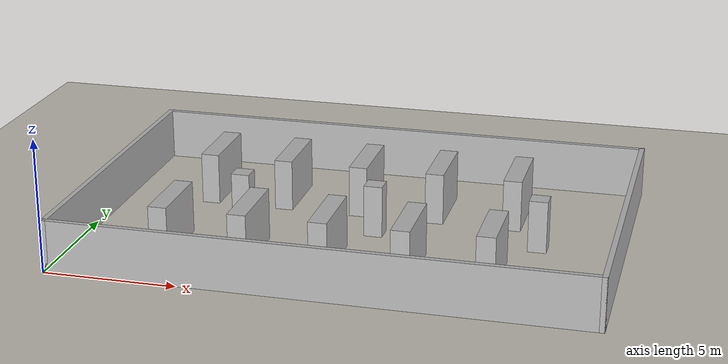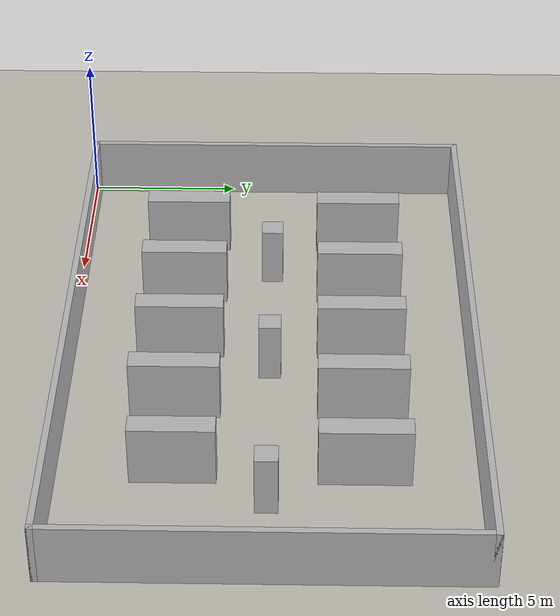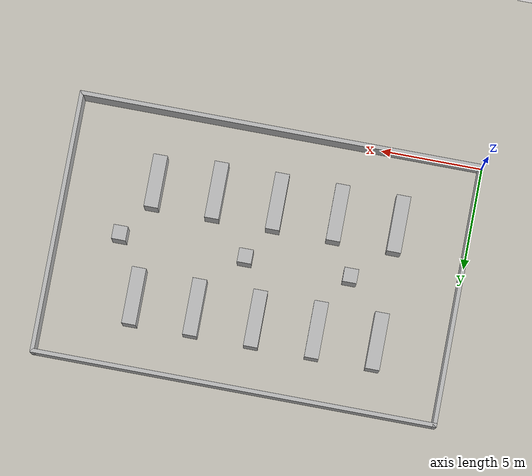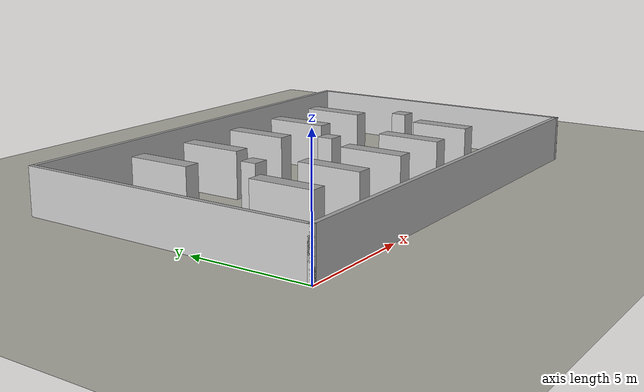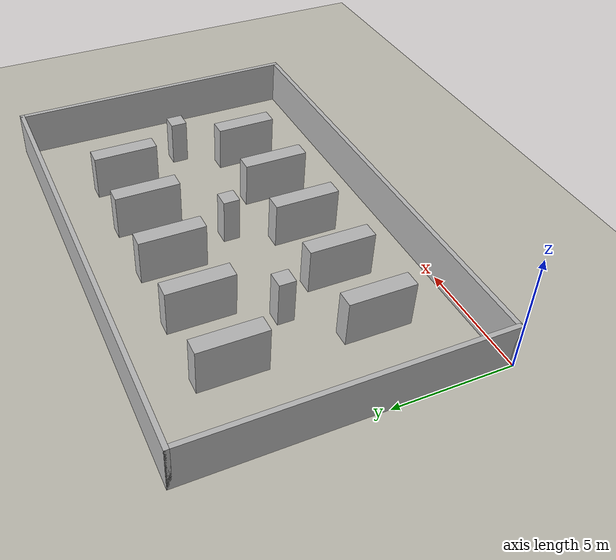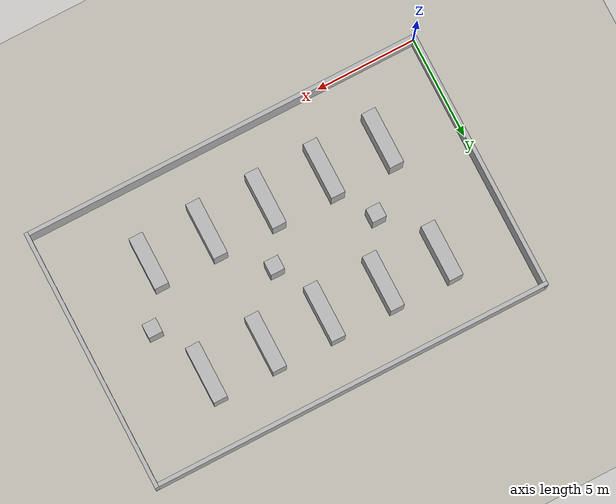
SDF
<?xml version="1.0" ?>
<sdf version="1.9">
  <world name="warehouse">
    <physics name="1ms" type="ignored">
      <max_step_size>0.001</max_step_size>
      <real_time_factor>1.0</real_time_factor>
    </physics>

    <plugin filename="gz-sim-physics-system" name="gz::sim::systems::Physics"/>
    <plugin filename="gz-sim-user-commands-system" name="gz::sim::systems::UserCommands"/>
    <plugin filename="gz-sim-scene-broadcaster-system" name="gz::sim::systems::SceneBroadcaster"/>
    <plugin filename="gz-sim-contact-system" name="gz::sim::systems::Contact"/>

    <light type="directional" name="sun">
      <cast_shadows>true</cast_shadows>
      <pose>10 6.5 10 0 0 0</pose>
      <diffuse>0.9 0.9 0.9 1</diffuse>
      <specular>0.2 0.2 0.2 1</specular>
      <direction>-0.3 0.2 -0.95</direction>
    </light>

    <model name="ground_plane">
      <static>true</static>
      <pose>10 6.5 0 0 0 0</pose>
      <link name="link">
        <collision name="collision">
          <geometry>
            <plane>
              <normal>0 0 1</normal>
              <size>40 40</size>
            </plane>
          </geometry>
        </collision>
        <visual name="visual">
          <geometry>
            <plane>
              <normal>0 0 1</normal>
              <size>40 40</size>
            </plane>
          </geometry>
          <material>
            <ambient>0.75 0.74 0.70 1</ambient>
            <diffuse>0.75 0.74 0.70 1</diffuse>
          </material>
        </visual>
      </link>
    </model>

    <!-- outer walls: closed 20 x 13 m box, matching maps/warehouse_a.pgm -->
    <model name="walls">
      <static>true</static>
      <link name="link">
        <visual name="wall_south">
          <pose>10 0.1 1.0 0 0 0</pose>
          <geometry><box><size>20 0.2 2.0</size></box></geometry>
        </visual>
        <collision name="wall_south">
          <pose>10 0.1 1.0 0 0 0</pose>
          <geometry><box><size>20 0.2 2.0</size></box></geometry>
        </collision>
        <visual name="wall_north">
          <pose>10 12.9 1.0 0 0 0</pose>
          <geometry><box><size>20 0.2 2.0</size></box></geometry>
        </visual>
        <collision name="wall_north">
          <pose>10 12.9 1.0 0 0 0</pose>
          <geometry><box><size>20 0.2 2.0</size></box></geometry>
        </collision>
        <visual name="wall_west">
          <pose>0.1 6.5 1.0 0 0 0</pose>
          <geometry><box><size>0.2 13 2.0</size></box></geometry>
        </visual>
        <collision name="wall_west">
          <pose>0.1 6.5 1.0 0 0 0</pose>
          <geometry><box><size>0.2 13 2.0</size></box></geometry>
        </collision>
        <visual name="wall_east">
          <pose>19.9 6.5 1.0 0 0 0</pose>
          <geometry><box><size>0.2 13 2.0</size></box></geometry>
        </visual>
        <collision name="wall_east">
          <pose>19.9 6.5 1.0 0 0 0</pose>
          <geometry><box><size>0.2 13 2.0</size></box></geometry>
        </collision>
      </link>
    </model>

    <!-- shelving units, bottom row (y = 2.2 .. 5.0) -->
    <model name="shelves_bottom">
      <static>true</static>
      <link name="link">
        <visual name="b1"><pose>3.55 3.6 1.0 0 0 0</pose><geometry><box><size>0.7 2.8 2.0</size></box></geometry></visual>
        <collision name="b1"><pose>3.55 3.6 1.0 0 0 0</pose><geometry><box><size>0.7 2.8 2.0</size></box></geometry></collision>
        <visual name="b2"><pose>6.55 3.6 1.0 0 0 0</pose><geometry><box><size>0.7 2.8 2.0</size></box></geometry></visual>
        <collision name="b2"><pose>6.55 3.6 1.0 0 0 0</pose><geometry><box><size>0.7 2.8 2.0</size></box></geometry></collision>
        <visual name="b3"><pose>9.55 3.6 1.0 0 0 0</pose><geometry><box><size>0.7 2.8 2.0</size></box></geometry></visual>
        <collision name="b3"><pose>9.55 3.6 1.0 0 0 0</pose><geometry><box><size>0.7 2.8 2.0</size></box></geometry></collision>
        <visual name="b4"><pose>12.55 3.6 1.0 0 0 0</pose><geometry><box><size>0.7 2.8 2.0</size></box></geometry></visual>
        <collision name="b4"><pose>12.55 3.6 1.0 0 0 0</pose><geometry><box><size>0.7 2.8 2.0</size></box></geometry></collision>
        <visual name="b5"><pose>15.55 3.7 1.0 0 0 0</pose><geometry><box><size>0.7 2.6 2.0</size></box></geometry></visual>
        <collision name="b5"><pose>15.55 3.7 1.0 0 0 0</pose><geometry><box><size>0.7 2.6 2.0</size></box></geometry></collision>
      </link>
    </model>

    <!-- shelving units, top row (y = 8.0 .. 10.8) -->
    <model name="shelves_top">
      <static>true</static>
      <link name="link">
        <visual name="t1"><pose>3.55 9.4 1.0 0 0 0</pose><geometry><box><size>0.7 2.8 2.0</size></box></geometry></visual>
        <collision name="t1"><pose>3.55 9.4 1.0 0 0 0</pose><geometry><box><size>0.7 2.8 2.0</size></box></geometry></collision>
        <visual name="t2"><pose>6.55 9.4 1.0 0 0 0</pose><geometry><box><size>0.7 2.8 2.0</size></box></geometry></visual>
        <collision name="t2"><pose>6.55 9.4 1.0 0 0 0</pose><geometry><box><size>0.7 2.8 2.0</size></box></geometry></collision>
        <visual name="t3"><pose>9.55 9.4 1.0 0 0 0</pose><geometry><box><size>0.7 2.8 2.0</size></box></geometry></visual>
        <collision name="t3"><pose>9.55 9.4 1.0 0 0 0</pose><geometry><box><size>0.7 2.8 2.0</size></box></geometry></collision>
        <visual name="t4"><pose>12.55 9.4 1.0 0 0 0</pose><geometry><box><size>0.7 2.8 2.0</size></box></geometry></visual>
        <collision name="t4"><pose>12.55 9.4 1.0 0 0 0</pose><geometry><box><size>0.7 2.8 2.0</size></box></geometry></collision>
        <visual name="t5"><pose>15.55 9.4 1.0 0 0 0</pose><geometry><box><size>0.7 2.8 2.0</size></box></geometry></visual>
        <collision name="t5"><pose>15.55 9.4 1.0 0 0 0</pose><geometry><box><size>0.7 2.8 2.0</size></box></geometry></collision>
      </link>
    </model>

    <!-- three pillars in the central aisle: a person can hide behind them -->
    <model name="pillars">
      <static>true</static>
      <link name="link">
        <visual name="p1"><pose>5.4 6.5 1.0 0 0 0</pose><geometry><box><size>0.7 0.7 2.0</size></box></geometry></visual>
        <collision name="p1"><pose>5.4 6.5 1.0 0 0 0</pose><geometry><box><size>0.7 0.7 2.0</size></box></geometry></collision>
        <visual name="p2"><pose>10.6 6.5 1.0 0 0 0</pose><geometry><box><size>0.7 0.7 2.0</size></box></geometry></visual>
        <collision name="p2"><pose>10.6 6.5 1.0 0 0 0</pose><geometry><box><size>0.7 0.7 2.0</size></box></geometry></collision>
        <visual name="p3"><pose>16.8 6.5 1.0 0 0 0</pose><geometry><box><size>0.7 0.7 2.0</size></box></geometry></visual>
        <collision name="p3"><pose>16.8 6.5 1.0 0 0 0</pose><geometry><box><size>0.7 0.7 2.0</size></box></geometry></collision>
      </link>
    </model>
  </world>
</sdf>
